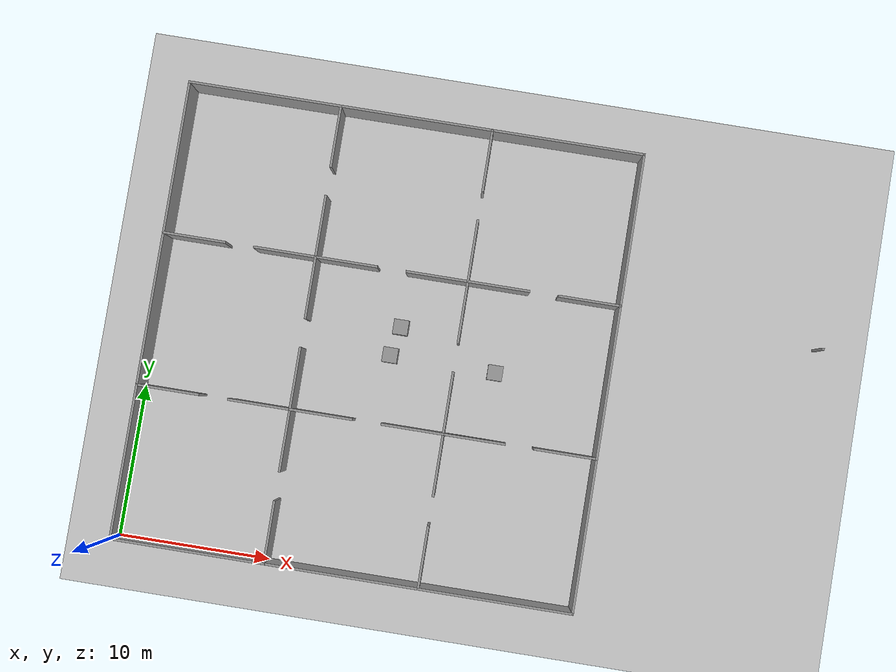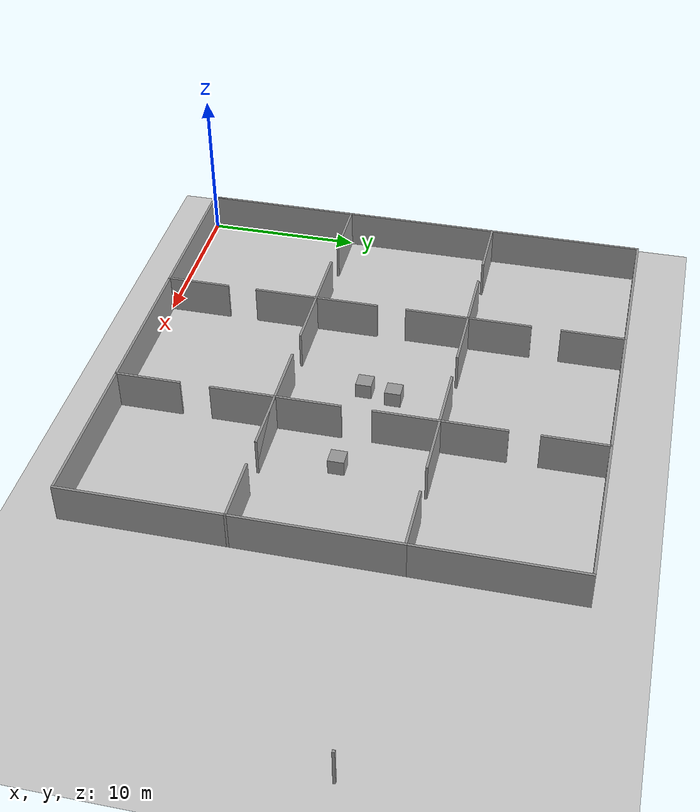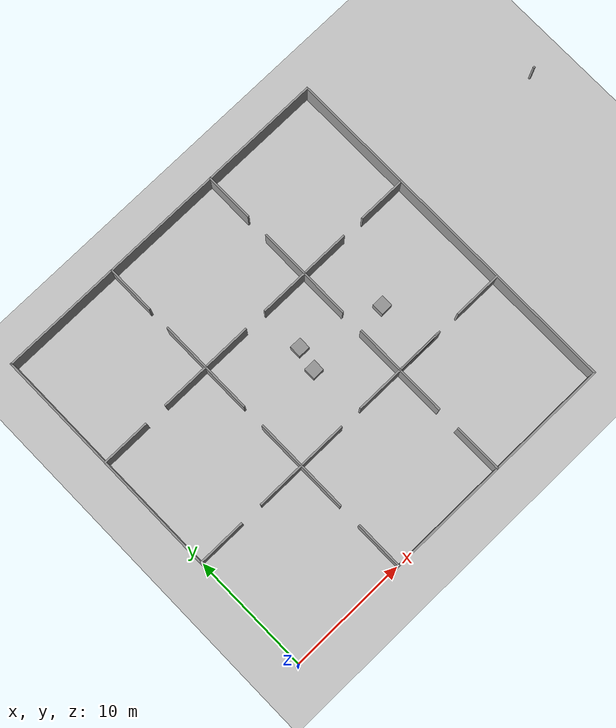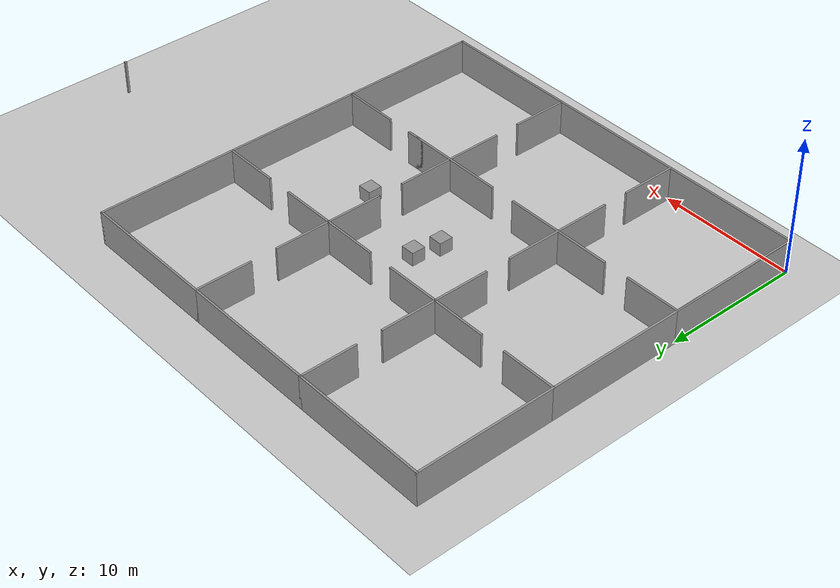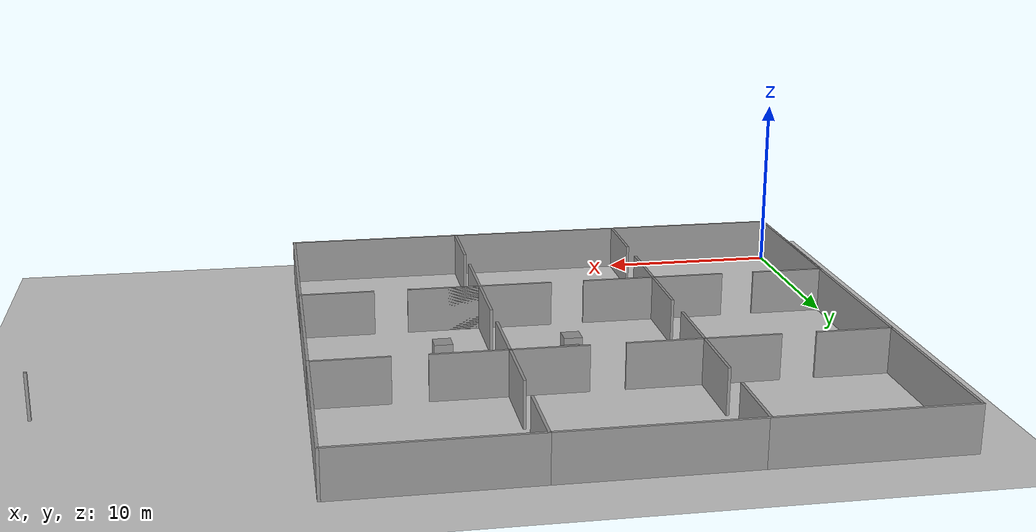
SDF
<sdf version="1.7">
 <world name="default">
  <model name="ground_plane">
   <static>1</static>
   <link name="link">
    <collision name="collision">
     <geometry><plane><normal>0 0 1</normal><size>100 100</size></plane></geometry>
     <surface>
      <contact><collide_bitmask>65535</collide_bitmask></contact>
      <friction><ode><mu>100</mu><mu2>50</mu2></ode></friction>
     </surface>
    </collision>
    <visual name="visual">
     <cast_shadows>0</cast_shadows>
     <geometry><plane><normal>0 0 1</normal><size>100 100</size></plane></geometry>
     <material>
      <script><uri>file://media/materials/scripts/gazebo.material</uri><name>Gazebo/Grey</name></script>
     </material>
    </visual>
   </link>
  </model>
  <model name="Building_3x3">
   <pose>21.6715 15 0 0 -0 0</pose>
   <link name="Wall_17">
    <collision name="Wall_17_Collision">
     <geometry><box><size>4.15 0.15 2.5</size></box></geometry>
     <pose>0 0 1.25 0 -0 0</pose>
    </collision>
    <visual name="Wall_17_Visual">
     <pose>0 0 1.25 0 -0 0</pose>
     <geometry><box><size>4.15 0.15 2.5</size></box></geometry>
     <material>
      <script><uri>file://media/materials/scripts/gazebo.material</uri><name>Gazebo/Grey</name></script>
      <ambient>1 1 1 1</ambient>
     </material>
     <meta><layer>0</layer></meta>
    </visual>
    <pose>-13.6715 -5 0 0 -0 0</pose>
   </link>
   <link name="Wall_20">
    <collision name="Wall_20_Collision">
     <geometry><box><size>10.15 0.15 2.5</size></box></geometry>
     <pose>0 0 1.25 0 -0 0</pose>
    </collision>
    <visual name="Wall_20_Visual">
     <pose>0 0 1.25 0 -0 0</pose>
     <geometry><box><size>10.15 0.15 2.5</size></box></geometry>
     <material>
      <script><uri>file://media/materials/scripts/gazebo.material</uri><name>Gazebo/Grey</name></script>
      <ambient>1 1 1 1</ambient>
     </material>
     <meta><layer>0</layer></meta>
    </visual>
    <pose>-21.6715 -10 0 0 -0 1.5708</pose>
   </link>
   <link name="Wall_22">
    <collision name="Wall_22_Collision">
     <geometry><box><size>4.15 0.15 2.5</size></box></geometry>
     <pose>0 0 1.25 0 -0 0</pose>
    </collision>
    <visual name="Wall_22_Visual">
     <pose>0 0 1.25 0 -0 0</pose>
     <geometry><box><size>4.15 0.15 2.5</size></box></geometry>
     <material>
      <script><uri>file://media/materials/scripts/gazebo.material</uri><name>Gazebo/Grey</name></script>
      <ambient>1 1 1 1</ambient>
     </material>
     <meta><layer>0</layer></meta>
    </visual>
    <pose>-19.6715 -5 0 0 -0 0</pose>
   </link>
   <link name="Wall_26">
    <collision name="Wall_26_Collision">
     <geometry><box><size>10.15 0.15 2.5</size></box></geometry>
     <pose>0 0 1.25 0 -0 0</pose>
    </collision>
    <visual name="Wall_26_Visual">
     <pose>0 0 1.25 0 -0 0</pose>
     <geometry><box><size>10.15 0.15 2.5</size></box></geometry>
     <material>
      <script><uri>file://media/materials/scripts/gazebo.material</uri><name>Gazebo/Grey</name></script>
      <ambient>1 1 1 1</ambient>
     </material>
     <meta><layer>0</layer></meta>
    </visual>
    <pose>-16.6715 -15 0 0 -0 0</pose>
   </link>
   <link name="Wall_28">
    <collision name="Wall_28_Collision">
     <geometry><box><size>4.15 0.15 2.5</size></box></geometry>
     <pose>0 0 1.25 0 -0 0</pose>
    </collision>
    <visual name="Wall_28_Visual">
     <pose>0 0 1.25 0 -0 0</pose>
     <geometry><box><size>4.15 0.15 2.5</size></box></geometry>
     <material>
      <script><uri>file://media/materials/scripts/gazebo.material</uri><name>Gazebo/Grey</name></script>
      <ambient>1 1 1 1</ambient>
     </material>
     <meta><layer>0</layer></meta>
    </visual>
    <pose>-11.6715 -7 0 0 -0 1.5708</pose>
   </link>
   <link name="Wall_30">
    <collision name="Wall_30_Collision">
     <geometry><box><size>4.15 0.15 2.5</size></box></geometry>
     <pose>0 0 1.25 0 -0 0</pose>
    </collision>
    <visual name="Wall_30_Visual">
     <pose>0 0 1.25 0 -0 0</pose>
     <geometry><box><size>4.15 0.15 2.5</size></box></geometry>
     <material>
      <script><uri>file://media/materials/scripts/gazebo.material</uri><name>Gazebo/Grey</name></script>
      <ambient>1 1 1 1</ambient>
     </material>
     <meta><layer>0</layer></meta>
    </visual>
    <pose>-11.6715 -13 0 0 -0 1.5708</pose>
   </link>
   <link name="Wall_33">
    <collision name="Wall_33_Collision">
     <geometry><box><size>10.15 0.15 2.5</size></box></geometry>
     <pose>0 0 1.25 0 -0 0</pose>
    </collision>
    <visual name="Wall_33_Visual">
     <pose>0 0 1.25 0 -0 0</pose>
     <geometry><box><size>10.15 0.15 2.5</size></box></geometry>
     <material>
      <script><uri>file://media/materials/scripts/gazebo.material</uri><name>Gazebo/Grey</name></script>
      <ambient>1 1 1 1</ambient>
     </material>
     <meta><layer>0</layer></meta>
    </visual>
    <pose>-6.67153 -15 0 0 -0 0</pose>
   </link>
   <link name="Wall_35">
    <collision name="Wall_35_Collision">
     <geometry><box><size>4.15 0.15 2.5</size></box></geometry>
     <pose>0 0 1.25 0 -0 0</pose>
    </collision>
    <visual name="Wall_35_Visual">
     <pose>0 0 1.25 0 -0 0</pose>
     <geometry><box><size>4.15 0.15 2.5</size></box></geometry>
     <material>
      <script><uri>file://media/materials/scripts/gazebo.material</uri><name>Gazebo/Grey</name></script>
      <ambient>1 1 1 1</ambient>
     </material>
     <meta><layer>0</layer></meta>
    </visual>
    <pose>-1.67153 -13 0 0 -0 -1.5708</pose>
   </link>
   <link name="Wall_37">
    <collision name="Wall_37_Collision">
     <geometry><box><size>4.15 0.15 2.5</size></box></geometry>
     <pose>0 0 1.25 0 -0 0</pose>
    </collision>
    <visual name="Wall_37_Visual">
     <pose>0 0 1.25 0 -0 0</pose>
     <geometry><box><size>4.15 0.15 2.5</size></box></geometry>
     <material>
      <script><uri>file://media/materials/scripts/gazebo.material</uri><name>Gazebo/Grey</name></script>
      <ambient>1 1 1 1</ambient>
     </material>
     <meta><layer>0</layer></meta>
    </visual>
    <pose>-1.67153 -7 0 0 -0 1.5708</pose>
   </link>
   <link name="Wall_39">
    <collision name="Wall_39_Collision">
     <geometry><box><size>4.15 0.15 2.5</size></box></geometry>
     <pose>0 0 1.25 0 -0 0</pose>
    </collision>
    <visual name="Wall_39_Visual">
     <pose>0 0 1.25 0 -0 0</pose>
     <geometry><box><size>4.15 0.15 2.5</size></box></geometry>
     <material>
      <script><uri>file://media/materials/scripts/gazebo.material</uri><name>Gazebo/Grey</name></script>
      <ambient>1 1 1 1</ambient>
     </material>
     <meta><layer>0</layer></meta>
    </visual>
    <pose>-9.67153 -5 0 0 -0 0</pose>
   </link>
   <link name="Wall_41">
    <collision name="Wall_41_Collision">
     <geometry><box><size>8.15 0.15 2.5</size></box></geometry>
     <pose>0 0 1.25 0 -0 0</pose>
    </collision>
    <visual name="Wall_41_Visual">
     <pose>0 0 1.25 0 -0 0</pose>
     <geometry><box><size>8.15 0.15 2.5</size></box></geometry>
     <material>
      <script><uri>file://media/materials/scripts/gazebo.material</uri><name>Gazebo/Grey</name></script>
      <ambient>1 1 1 1</ambient>
     </material>
     <meta><layer>0</layer></meta>
    </visual>
    <pose>-1.67153 -5 0 0 -0 0</pose>
   </link>
   <link name="Wall_44">
    <collision name="Wall_44_Collision">
     <geometry><box><size>10.15 0.15 2.5</size></box></geometry>
     <pose>0 0 1.25 0 -0 0</pose>
    </collision>
    <visual name="Wall_44_Visual">
     <pose>0 0 1.25 0 -0 0</pose>
     <geometry><box><size>10.15 0.15 2.5</size></box></geometry>
     <material>
      <script><uri>file://media/materials/scripts/gazebo.material</uri><name>Gazebo/Grey</name></script>
      <ambient>1 1 1 1</ambient>
     </material>
     <meta><layer>0</layer></meta>
    </visual>
    <pose>3.32847 -15 0 0 -0 0</pose>
   </link>
   <link name="Wall_46">
    <collision name="Wall_46_Collision">
     <geometry><box><size>10.15 0.15 2.5</size></box></geometry>
     <pose>0 0 1.25 0 -0 0</pose>
    </collision>
    <visual name="Wall_46_Visual">
     <pose>0 0 1.25 0 -0 0</pose>
     <geometry><box><size>10.15 0.15 2.5</size></box></geometry>
     <material>
      <script><uri>file://media/materials/scripts/gazebo.material</uri><name>Gazebo/Grey</name></script>
      <ambient>1 1 1 1</ambient>
     </material>
     <meta><layer>0</layer></meta>
    </visual>
    <pose>8.32847 -10 0 0 -0 1.5708</pose>
   </link>
   <link name="Wall_48">
    <collision name="Wall_48_Collision">
     <geometry><box><size>4.15 0.15 2.5</size></box></geometry>
     <pose>0 0 1.25 0 -0 0</pose>
    </collision>
    <visual name="Wall_48_Visual">
     <pose>0 0 1.25 0 -0 0</pose>
     <geometry><box><size>4.15 0.15 2.5</size></box></geometry>
     <material>
      <script><uri>file://media/materials/scripts/gazebo.material</uri><name>Gazebo/Grey</name></script>
      <ambient>1 1 1 1</ambient>
     </material>
     <meta><layer>0</layer></meta>
    </visual>
    <pose>6.32847 -5 0 0 -0 3.14159</pose>
   </link>
   <link name="Wall_50">
    <collision name="Wall_50_Collision">
     <geometry><box><size>0.16 0.15 2.5</size></box></geometry>
     <pose>0 0 1.25 0 -0 0</pose>
    </collision>
    <visual name="Wall_50_Visual">
     <pose>0 0 1.25 0 -0 0</pose>
     <geometry><box><size>0.16 0.15 2.5</size></box></geometry>
     <material>
      <script><uri>file://media/materials/scripts/gazebo.material</uri><name>Gazebo/Grey</name></script>
      <ambient>1 1 1 1</ambient>
     </material>
     <meta><layer>0</layer></meta>
    </visual>
    <pose>21.6665 4.32487 0 0 -0 0</pose>
   </link>
   <link name="Wall_52">
    <collision name="Wall_52_Collision">
     <geometry><box><size>4.15 0.15 2.5</size></box></geometry>
     <pose>0 0 1.25 0 -0 0</pose>
    </collision>
    <visual name="Wall_52_Visual">
     <pose>0 0 1.25 0 -0 0</pose>
     <geometry><box><size>4.15 0.15 2.5</size></box></geometry>
     <material>
      <script><uri>file://media/materials/scripts/gazebo.material</uri><name>Gazebo/Grey</name></script>
      <ambient>1 1 1 1</ambient>
     </material>
     <meta><layer>0</layer></meta>
    </visual>
    <pose>0.328472 -5 0 0 -0 0</pose>
   </link>
   <link name="Wall_54">
    <collision name="Wall_54_Collision">
     <geometry><box><size>20.15 0.15 2.5</size></box></geometry>
     <pose>0 0 1.25 0 -0 0</pose>
    </collision>
    <visual name="Wall_54_Visual">
     <pose>0 0 1.25 0 -0 0</pose>
     <geometry><box><size>20.15 0.15 2.5</size></box></geometry>
     <material>
      <script><uri>file://media/materials/scripts/gazebo.material</uri><name>Gazebo/Grey</name></script>
      <ambient>1 1 1 1</ambient>
     </material>
     <meta><layer>0</layer></meta>
    </visual>
    <pose>-21.6715 -5 0 0 -0 1.5708</pose>
   </link>
   <link name="Wall_56">
    <collision name="Wall_56_Collision">
     <geometry><box><size>10.15 0.15 2.5</size></box></geometry>
     <pose>0 0 1.25 0 -0 0</pose>
    </collision>
    <visual name="Wall_56_Visual">
     <pose>0 0 1.25 0 -0 0</pose>
     <geometry><box><size>10.15 0.15 2.5</size></box></geometry>
     <material>
      <script><uri>file://media/materials/scripts/gazebo.material</uri><name>Gazebo/Grey</name></script>
      <ambient>1 1 1 1</ambient>
     </material>
     <meta><layer>0</layer></meta>
    </visual>
    <pose>-21.6715 10 0 0 -0 1.5708</pose>
   </link>
   <link name="Wall_58">
    <collision name="Wall_58_Collision">
     <geometry><box><size>10.15 0.15 2.5</size></box></geometry>
     <pose>0 0 1.25 0 -0 0</pose>
    </collision>
    <visual name="Wall_58_Visual">
     <pose>0 0 1.25 0 -0 0</pose>
     <geometry><box><size>10.15 0.15 2.5</size></box></geometry>
     <material>
      <script><uri>file://media/materials/scripts/gazebo.material</uri><name>Gazebo/Grey</name></script>
      <ambient>1 1 1 1</ambient>
     </material>
     <meta><layer>0</layer></meta>
    </visual>
    <pose>3.32847 15 0 0 -0 0</pose>
   </link>
   <link name="Wall_60">
    <collision name="Wall_60_Collision">
     <geometry><box><size>10.15 0.15 2.5</size></box></geometry>
     <pose>0 0 1.25 0 -0 0</pose>
    </collision>
    <visual name="Wall_60_Visual">
     <pose>0 0 1.25 0 -0 0</pose>
     <geometry><box><size>10.15 0.15 2.5</size></box></geometry>
     <material>
      <script><uri>file://media/materials/scripts/gazebo.material</uri><name>Gazebo/Grey</name></script>
      <ambient>1 1 1 1</ambient>
     </material>
     <meta><layer>0</layer></meta>
    </visual>
    <pose>-6.67153 15 0 0 -0 0</pose>
   </link>
   <link name="Wall_62">
    <collision name="Wall_62_Collision">
     <geometry><box><size>10.15 0.15 2.5</size></box></geometry>
     <pose>0 0 1.25 0 -0 0</pose>
    </collision>
    <visual name="Wall_62_Visual">
     <pose>0 0 1.25 0 -0 0</pose>
     <geometry><box><size>10.15 0.15 2.5</size></box></geometry>
     <material>
      <script><uri>file://media/materials/scripts/gazebo.material</uri><name>Gazebo/Grey</name></script>
      <ambient>1 1 1 1</ambient>
     </material>
     <meta><layer>0</layer></meta>
    </visual>
    <pose>-16.6715 15 0 0 -0 0</pose>
   </link>
   <link name="Wall_64">
    <collision name="Wall_64_Collision">
     <geometry><box><size>10.15 0.15 2.5</size></box></geometry>
     <pose>0 0 1.25 0 -0 0</pose>
    </collision>
    <visual name="Wall_64_Visual">
     <pose>0 0 1.25 0 -0 0</pose>
     <geometry><box><size>10.15 0.15 2.5</size></box></geometry>
     <material>
      <script><uri>file://media/materials/scripts/gazebo.material</uri><name>Gazebo/Grey</name></script>
      <ambient>1 1 1 1</ambient>
     </material>
     <meta><layer>0</layer></meta>
    </visual>
    <pose>8.32847 10 0 0 -0 -1.5708</pose>
   </link>
   <link name="Wall_66">
    <collision name="Wall_66_Collision">
     <geometry><box><size>10.15 0.15 2.5</size></box></geometry>
     <pose>0 0 1.25 0 -0 0</pose>
    </collision>
    <visual name="Wall_66_Visual">
     <pose>0 0 1.25 0 -0 0</pose>
     <geometry><box><size>10.15 0.15 2.5</size></box></geometry>
     <material>
      <script><uri>file://media/materials/scripts/gazebo.material</uri><name>Gazebo/Grey</name></script>
      <ambient>1 1 1 1</ambient>
     </material>
     <meta><layer>0</layer></meta>
    </visual>
    <pose>8.32847 0 0 0 -0 -1.5708</pose>
   </link>
   <link name="Wall_68">
    <collision name="Wall_68_Collision">
     <geometry><box><size>4.15 0.15 2.5</size></box></geometry>
     <pose>0 0 1.25 0 -0 0</pose>
    </collision>
    <visual name="Wall_68_Visual">
     <pose>0 0 1.25 0 -0 0</pose>
     <geometry><box><size>4.15 0.15 2.5</size></box></geometry>
     <material>
      <script><uri>file://media/materials/scripts/gazebo.material</uri><name>Gazebo/Grey</name></script>
      <ambient>1 1 1 1</ambient>
     </material>
     <meta><layer>0</layer></meta>
    </visual>
    <pose>-19.6715 5 0 0 -0 0</pose>
   </link>
   <link name="Wall_70">
    <collision name="Wall_70_Collision">
     <geometry><box><size>4.15 0.15 2.5</size></box></geometry>
     <pose>0 0 1.25 0 -0 0</pose>
    </collision>
    <visual name="Wall_70_Visual">
     <pose>0 0 1.25 0 -0 0</pose>
     <geometry><box><size>4.15 0.15 2.5</size></box></geometry>
     <material>
      <script><uri>file://media/materials/scripts/gazebo.material</uri><name>Gazebo/Grey</name></script>
      <ambient>1 1 1 1</ambient>
     </material>
     <meta><layer>0</layer></meta>
    </visual>
    <pose>-13.6715 5 0 0 -0 0</pose>
   </link>
   <link name="Wall_72">
    <collision name="Wall_72_Collision">
     <geometry><box><size>4.15 0.15 2.5</size></box></geometry>
     <pose>0 0 1.25 0 -0 0</pose>
    </collision>
    <visual name="Wall_72_Visual">
     <pose>0 0 1.25 0 -0 0</pose>
     <geometry><box><size>4.15 0.15 2.5</size></box></geometry>
     <material>
      <script><uri>file://media/materials/scripts/gazebo.material</uri><name>Gazebo/Grey</name></script>
      <ambient>1 1 1 1</ambient>
     </material>
     <meta><layer>0</layer></meta>
    </visual>
    <pose>-11.6715 3 0 0 -0 -1.5708</pose>
   </link>
   <link name="Wall_74">
    <collision name="Wall_74_Collision">
     <geometry><box><size>4.15 0.15 2.5</size></box></geometry>
     <pose>0 0 1.25 0 -0 0</pose>
    </collision>
    <visual name="Wall_74_Visual">
     <pose>0 0 1.25 0 -0 0</pose>
     <geometry><box><size>4.15 0.15 2.5</size></box></geometry>
     <material>
      <script><uri>file://media/materials/scripts/gazebo.material</uri><name>Gazebo/Grey</name></script>
      <ambient>1 1 1 1</ambient>
     </material>
     <meta><layer>0</layer></meta>
    </visual>
    <pose>-11.6715 -3 0 0 -0 1.5708</pose>
   </link>
   <link name="Wall_76">
    <collision name="Wall_76_Collision">
     <geometry><box><size>4.15 0.15 2.5</size></box></geometry>
     <pose>0 0 1.25 0 -0 0</pose>
    </collision>
    <visual name="Wall_76_Visual">
     <pose>0 0 1.25 0 -0 0</pose>
     <geometry><box><size>4.15 0.15 2.5</size></box></geometry>
     <material>
      <script><uri>file://media/materials/scripts/gazebo.material</uri><name>Gazebo/Grey</name></script>
      <ambient>1 1 1 1</ambient>
     </material>
     <meta><layer>0</layer></meta>
    </visual>
    <pose>-3.67153 5 0 0 -0 3.14159</pose>
   </link>
   <link name="Wall_78">
    <collision name="Wall_78_Collision">
     <geometry><box><size>4.15 0.15 2.5</size></box></geometry>
     <pose>0 0 1.25 0 -0 0</pose>
    </collision>
    <visual name="Wall_78_Visual">
     <pose>0 0 1.25 0 -0 0</pose>
     <geometry><box><size>4.15 0.15 2.5</size></box></geometry>
     <material>
      <script><uri>file://media/materials/scripts/gazebo.material</uri><name>Gazebo/Grey</name></script>
      <ambient>1 1 1 1</ambient>
     </material>
     <meta><layer>0</layer></meta>
    </visual>
    <pose>-9.67153 5 0 0 -0 0</pose>
   </link>
   <link name="Wall_80">
    <collision name="Wall_80_Collision">
     <geometry><box><size>4.15 0.15 2.5</size></box></geometry>
     <pose>0 0 1.25 0 -0 0</pose>
    </collision>
    <visual name="Wall_80_Visual">
     <pose>0 0 1.25 0 -0 0</pose>
     <geometry><box><size>4.15 0.15 2.5</size></box></geometry>
     <material>
      <script><uri>file://media/materials/scripts/gazebo.material</uri><name>Gazebo/Grey</name></script>
      <ambient>1 1 1 1</ambient>
     </material>
     <meta><layer>0</layer></meta>
    </visual>
    <pose>-1.67153 3 0 0 -0 -1.5708</pose>
   </link>
   <link name="Wall_82">
    <collision name="Wall_82_Collision">
     <geometry><box><size>4.15 0.15 2.5</size></box></geometry>
     <pose>0 0 1.25 0 -0 0</pose>
    </collision>
    <visual name="Wall_82_Visual">
     <pose>0 0 1.25 0 -0 0</pose>
     <geometry><box><size>4.15 0.15 2.5</size></box></geometry>
     <material>
      <script><uri>file://media/materials/scripts/gazebo.material</uri><name>Gazebo/Grey</name></script>
      <ambient>1 1 1 1</ambient>
     </material>
     <meta><layer>0</layer></meta>
    </visual>
    <pose>-1.67153 -3 0 0 -0 1.5708</pose>
   </link>
   <link name="Wall_84">
    <collision name="Wall_84_Collision">
     <geometry><box><size>4.15 0.15 2.5</size></box></geometry>
     <pose>0 0 1.25 0 -0 0</pose>
    </collision>
    <visual name="Wall_84_Visual">
     <pose>0 0 1.25 0 -0 0</pose>
     <geometry><box><size>4.15 0.15 2.5</size></box></geometry>
     <material>
      <script><uri>file://media/materials/scripts/gazebo.material</uri><name>Gazebo/Grey</name></script>
      <ambient>1 1 1 1</ambient>
     </material>
     <meta><layer>0</layer></meta>
    </visual>
    <pose>0.328472 5 0 0 -0 0</pose>
   </link>
   <link name="Wall_86">
    <collision name="Wall_86_Collision">
     <geometry><box><size>4.15 0.15 2.5</size></box></geometry>
     <pose>0 0 1.25 0 -0 0</pose>
    </collision>
    <visual name="Wall_86_Visual">
     <pose>0 0 1.25 0 -0 0</pose>
     <geometry><box><size>4.15 0.15 2.5</size></box></geometry>
     <material>
      <script><uri>file://media/materials/scripts/gazebo.material</uri><name>Gazebo/Grey</name></script>
      <ambient>1 1 1 1</ambient>
     </material>
     <meta><layer>0</layer></meta>
    </visual>
    <pose>6.32847 5 0 0 -0 0</pose>
   </link>
   <link name="Wall_88">
    <collision name="Wall_88_Collision">
     <geometry><box><size>4.15 0.15 2.5</size></box></geometry>
     <pose>0 0 1.25 0 -0 0</pose>
    </collision>
    <visual name="Wall_88_Visual">
     <pose>0 0 1.25 0 -0 0</pose>
     <geometry><box><size>4.15 0.15 2.5</size></box></geometry>
     <material>
      <script><uri>file://media/materials/scripts/gazebo.material</uri><name>Gazebo/Grey</name></script>
      <ambient>1 1 1 1</ambient>
     </material>
     <meta><layer>0</layer></meta>
    </visual>
    <pose>-1.67153 13 0 0 -0 -1.5708</pose>
   </link>
   <link name="Wall_90">
    <collision name="Wall_90_Collision">
     <geometry><box><size>4.15 0.15 2.5</size></box></geometry>
     <pose>0 0 1.25 0 -0 0</pose>
    </collision>
    <visual name="Wall_90_Visual">
     <pose>0 0 1.25 0 -0 0</pose>
     <geometry><box><size>4.15 0.15 2.5</size></box></geometry>
     <material>
      <script><uri>file://media/materials/scripts/gazebo.material</uri><name>Gazebo/Grey</name></script>
      <ambient>1 1 1 1</ambient>
     </material>
     <meta><layer>0</layer></meta>
    </visual>
    <pose>-1.67153 7 0 0 -0 1.5708</pose>
   </link>
   <link name="Wall_92">
    <collision name="Wall_92_Collision">
     <geometry><box><size>4.15 0.15 2.5</size></box></geometry>
     <pose>0 0 1.25 0 -0 0</pose>
    </collision>
    <visual name="Wall_92_Visual">
     <pose>0 0 1.25 0 -0 0</pose>
     <geometry><box><size>4.15 0.15 2.5</size></box></geometry>
     <material>
      <script><uri>file://media/materials/scripts/gazebo.material</uri><name>Gazebo/Grey</name></script>
      <ambient>1 1 1 1</ambient>
     </material>
     <meta><layer>0</layer></meta>
    </visual>
    <pose>-11.6715 7 0 0 -0 1.5708</pose>
   </link>
   <link name="Wall_94">
    <collision name="Wall_94_Collision">
     <geometry><box><size>4.15 0.15 2.5</size></box></geometry>
     <pose>0 0 1.25 0 -0 0</pose>
    </collision>
    <visual name="Wall_94_Visual">
     <pose>0 0 1.25 0 -0 0</pose>
     <geometry><box><size>4.15 0.15 2.5</size></box></geometry>
     <material>
      <script><uri>file://media/materials/scripts/gazebo.material</uri><name>Gazebo/Grey</name></script>
      <ambient>1 1 1 1</ambient>
     </material>
     <meta><layer>0</layer></meta>
    </visual>
    <pose>-11.6715 13 0 0 -0 1.5708</pose>
   </link>
   <static>1</static>
  </model>
  <model name="unit_box_1_clone_2">
   <pose>22.6959 14.4762 0.499995 0 1e-05 0</pose>
   <link name="link">
    <inertial>
     <mass>1</mass>
     <inertia>
      <ixx>0.166667</ixx>
      <ixy>0</ixy>
      <ixz>0</ixz>
      <iyy>0.166667</iyy>
      <iyz>0</iyz>
      <izz>0.166667</izz>
     </inertia>
    </inertial>
    <collision name="collision"><geometry><box><size>1 1 1</size></box></geometry></collision>
    <visual name="visual">
     <geometry><box><size>1 1 1</size></box></geometry>
     <material>
      <script><name>Gazebo/Grey</name><uri>file://media/materials/scripts/gazebo.material</uri></script>
     </material>
    </visual>
   </link>
  </model>
  <model name="unit_box_1_clone_10">
   <pose>16.0976 16.4593 0.499995 0 1e-05 0</pose>
   <link name="link">
    <inertial>
     <mass>1</mass>
     <inertia>
      <ixx>0.166667</ixx>
      <ixy>0</ixy>
      <ixz>0</ixz>
      <iyy>0.166667</iyy>
      <iyz>0</iyz>
      <izz>0.166667</izz>
     </inertia>
    </inertial>
    <collision name="collision"><geometry><box><size>1 1 1</size></box></geometry></collision>
    <visual name="visual">
     <geometry><box><size>1 1 1</size></box></geometry>
     <material>
      <script><name>Gazebo/Grey</name><uri>file://media/materials/scripts/gazebo.material</uri></script>
     </material>
    </visual>
   </link>
  </model>
  <model name="unit_box_1_clone_12">
   <pose>15.7018 14.5391 0.499995 0 -1e-05 0</pose>
   <link name="link">
    <inertial>
     <mass>1</mass>
     <inertia>
      <ixx>0.166667</ixx>
      <ixy>0</ixy>
      <ixz>0</ixz>
      <iyy>0.166667</iyy>
      <iyz>0</iyz>
      <izz>0.166667</izz>
     </inertia>
    </inertial>
    <collision name="collision"><geometry><box><size>1 1 1</size></box></geometry></collision>
    <visual name="visual">
     <geometry><box><size>1 1 1</size></box></geometry>
     <material>
      <script><name>Gazebo/Grey</name><uri>file://media/materials/scripts/gazebo.material</uri></script>
     </material>
    </visual>
   </link>
  </model>
 </world>
</sdf>
